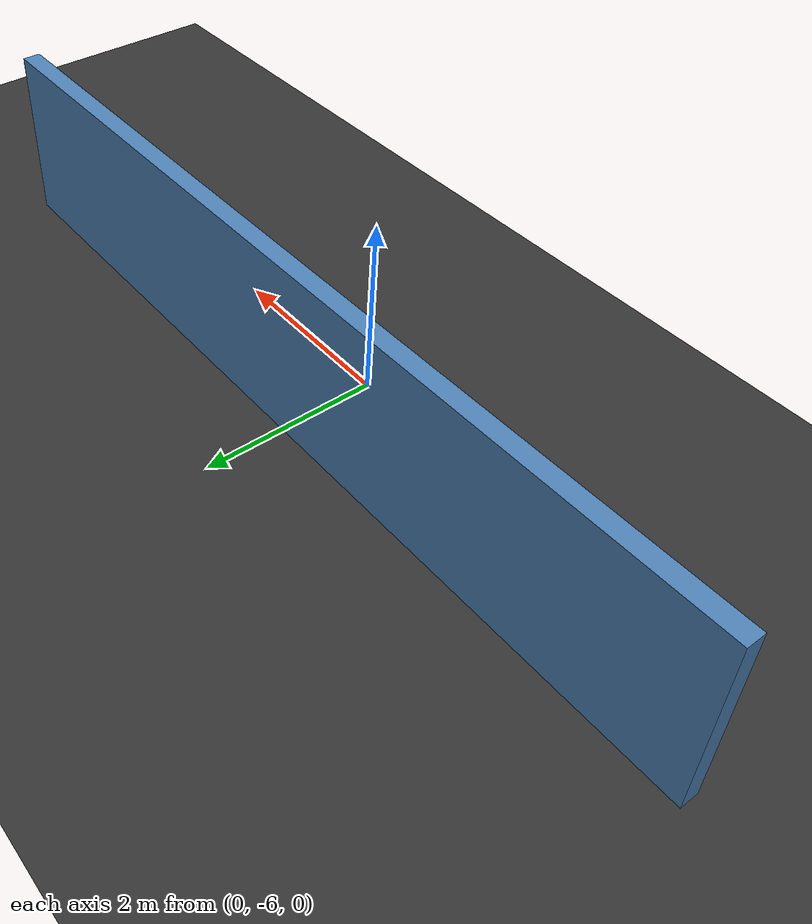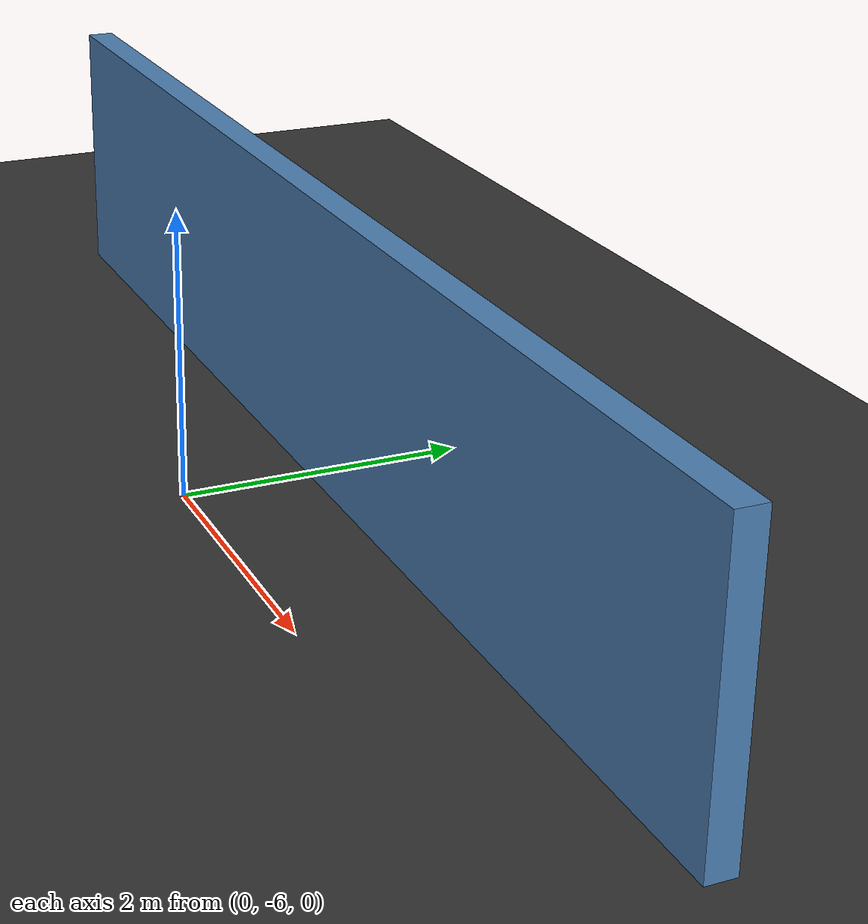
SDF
<sdf version="1.9">
 <world name="default">
  <model name="ground_plane">
   <static>true</static>
   <link name="link">
    <collision name="collision">
     <geometry><plane><normal>0 0 1</normal><size>10 10</size></plane></geometry>
    </collision>
    <visual name="visual">
     <geometry><plane><normal>0 0 1</normal><size>10 10</size></plane></geometry>
     <material>
      <ambient>0.2 0.2 0.2 1</ambient>
      <diffuse>0.2 0.2 0.2 1</diffuse>
      <specular>0.2 0.2 0.2 1</specular>
     </material>
    </visual>
    <inertial>
     <mass>1</mass>
     <inertia><ixx>1</ixx><ixy>0</ixy><ixz>0</ixz><iyy>1</iyy><iyz>0</iyz><izz>1</izz></inertia>
    </inertial>
   </link>
  </model>
  <model name="wall_west">
   <static>true</static>
   <pose>0 -5 1 0 -0 0</pose>
   <link name="link">
    <collision name="collision"><geometry><box><size>10 0.2 2</size></box></geometry></collision>
    <visual name="visual">
     <geometry><box><size>10 0.2 2</size></box></geometry>
     <material><ambient>0.3 0.5 0.7 1</ambient></material>
    </visual>
    <inertial>
     <mass>1</mass>
     <inertia><ixx>1</ixx><ixy>0</ixy><ixz>0</ixz><iyy>1</iyy><iyz>0</iyz><izz>1</izz></inertia>
    </inertial>
   </link>
  </model>
 </world>
</sdf>
